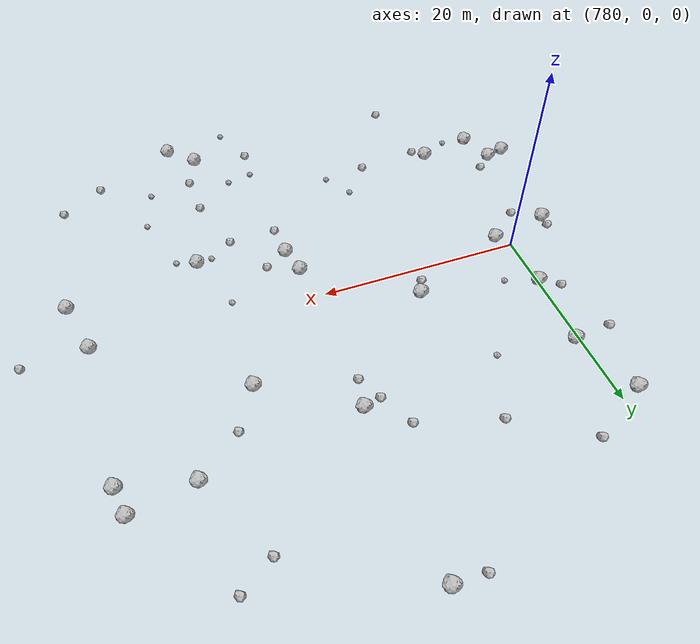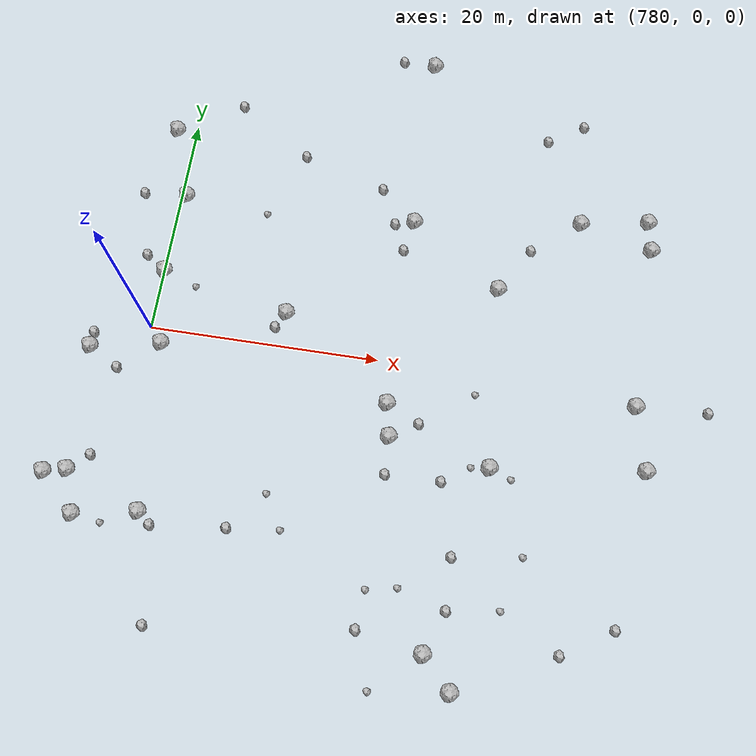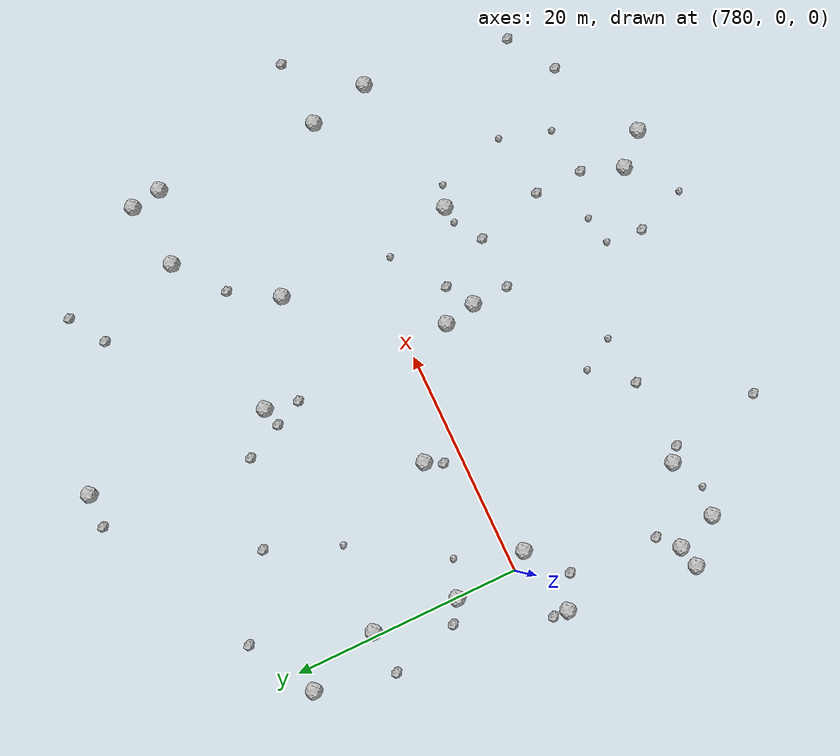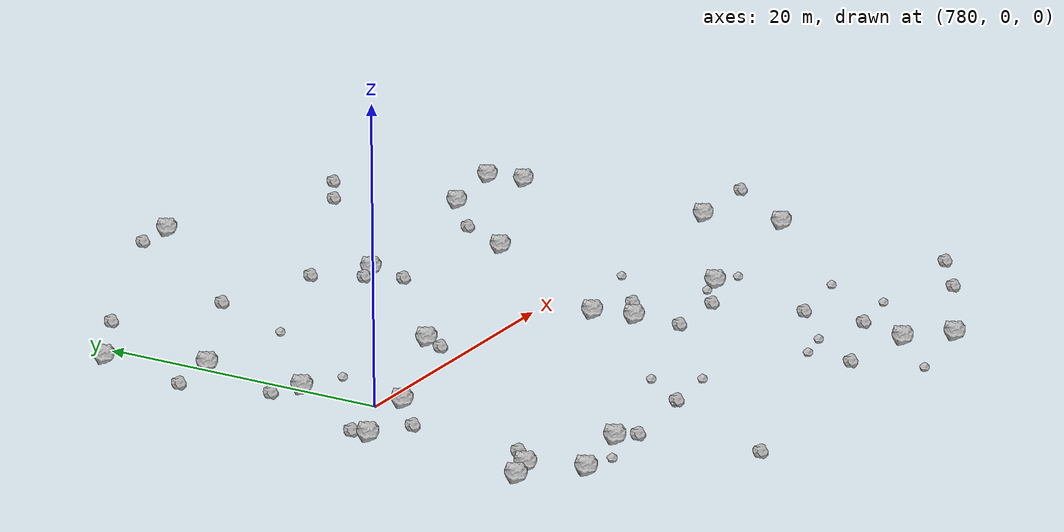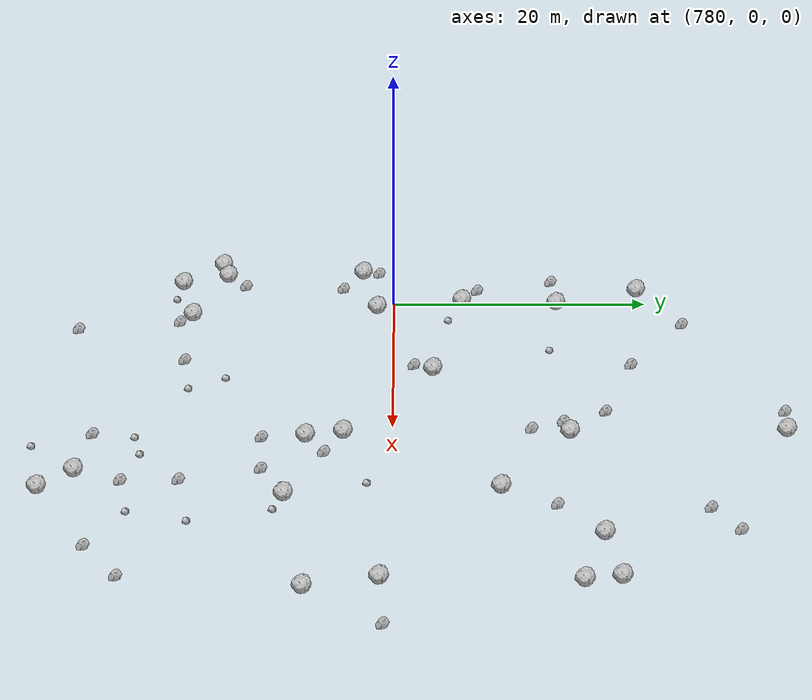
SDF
<sdf version="1.6">
 <world name="default">
  <include><uri>model://sun</uri></include>
  <model name="rock1_20_4">
   <include><uri>model://rock1</uri><pose>816.2226030430961 15.48418449693333 0.5 0 0 0</pose></include>
  </model>
  <model name="rock1_20_5">
   <include><uri>model://rock1</uri><pose>809.7214293125593 -26.217533660099434 0.5 0 0 0</pose></include>
  </model>
  <model name="rock1_20_6">
   <include><uri>model://rock1</uri><pose>801.4085640766264 -3.7356094270294307 0.5 0 0 0</pose></include>
  </model>
  <model name="rock1_20_7">
   <include><uri>model://rock1</uri><pose>801.9852757936694 -6.572630635367524 0.5 0 0 0</pose></include>
  </model>
  <model name="rock1_20_8">
   <include><uri>model://rock1</uri><pose>801.0536697471791 29.797669125663965 0.5 0 0 0</pose></include>
  </model>
  <model name="rock1_20_9">
   <include><uri>model://rock1</uri><pose>775.1882467463054 -2.509715650090463 0.5 0 0 0</pose></include>
  </model>
  <model name="rock1_20_10">
   <include><uri>model://rock1</uri><pose>778.2668399210634 19.399425876546253 0.5 0 0 0</pose></include>
  </model>
  <model name="rock1_20_11">
   <include><uri>model://rock1</uri><pose>780.0370698453422 5.413755934293874 0.5 0 0 0</pose></include>
  </model>
  <model name="rock1_20_12">
   <include><uri>model://rock1</uri><pose>781.1936926532611 -1.3356512583993947 0.5 0 0 0</pose></include>
  </model>
  <model name="rock1_20_13">
   <include><uri>model://rock1</uri><pose>775.8221520919816 -13.402793773877491 0.5 0 0 0</pose></include>
  </model>
  <model name="rock1_20_14">
   <include><uri>model://rock1</uri><pose>809.5808608791532 8.070551867616985 0.5 0 0 0</pose></include>
  </model>
  <model name="rock1_20_15">
   <include><uri>model://rock1</uri><pose>801.3563642372726 13.40629900454229 0.5 0 0 0</pose></include>
  </model>
  <model name="rock1_20_16">
   <include><uri>model://rock1</uri><pose>777.0859819276004 -16.96040591497571 0.5 0 0 0</pose></include>
  </model>
  <model name="rock1_20_17">
   <include><uri>model://rock1</uri><pose>780.5007206536908 12.91052566031994 0.5 0 0 0</pose></include>
  </model>
  <model name="rock1_20_18">
   <include><uri>model://rock1</uri><pose>822.2274202459466 16.502576363049663 0.5 0 0 0</pose></include>
  </model>
  <model name="rock1_20_19">
   <include><uri>model://rock1</uri><pose>773.8974416828413 -13.8650831393713 0.5 0 0 0</pose></include>
  </model>
  <model name="rock1_20_20">
   <include><uri>model://rock1</uri><pose>822.6813313518554 13.805497771146584 0.5 0 0 0</pose></include>
  </model>
  <model name="rock1_20_21">
   <include><uri>model://rock1</uri><pose>791.4751615014699 3.064610272440035 0.5 0 0 0</pose></include>
  </model>
  <model name="rock1_20_22">
   <include><uri>model://rock1</uri><pose>823.6740002033675 -6.308857565384436 0.5 0 0 0</pose></include>
  </model>
  <model name="rock1_20_23">
   <include><uri>model://rock1</uri><pose>810.7028821420479 -7.9972272058246325 0.5 0 0 0</pose></include>
  </model>
  <model name="rock1_20_24">
   <include><uri>model://rock1</uri><pose>822.3966587406748 -0.8485806284303834 0.5 0 0 0</pose></include>
  </model>
  <model name="rock1_20_25">
   <include><uri>model://rock1</uri><pose>782.4728897162564 -15.963887715528934 0.5 0 0 0</pose></include>
  </model>
  <model name="rock1_20_26">
   <include><uri>model://rock1</uri><pose>807.2364167975245 -23.660206902527317 0.5 0 0 0</pose></include>
  </model>
  <model name="rock2_20_0">
   <include><uri>model://rock2</uri><pose>783.9070997595913 22.770799941834305 0.3 0 0 0</pose></include>
  </model>
  <model name="rock2_20_1">
   <include><uri>model://rock2</uri><pose>808.471548675445 -15.793894945443398 0.3 0 0 0</pose></include>
  </model>
  <model name="rock2_20_2">
   <include><uri>model://rock2</uri><pose>776.6405475695065 12.592945726571948 0.3 0 0 0</pose></include>
  </model>
  <model name="rock2_20_3">
   <include><uri>model://rock2</uri><pose>808.5962714010972 -20.10275873825627 0.3 0 0 0</pose></include>
  </model>
  <model name="rock2_20_4">
   <include><uri>model://rock2</uri><pose>817.9154944690619 -22.18102941903331 0.3 0 0 0</pose></include>
  </model>
  <model name="rock2_20_5">
   <include><uri>model://rock2</uri><pose>806.8276391563923 -9.756488783793746 0.3 0 0 0</pose></include>
  </model>
  <model name="rock2_20_6">
   <include><uri>model://rock2</uri><pose>775.19939236612 -1.2116397075140348 0.3 0 0 0</pose></include>
  </model>
  <model name="rock2_20_7">
   <include><uri>model://rock2</uri><pose>822.1407181049403 -19.564250525575204 0.3 0 0 0</pose></include>
  </model>
  <model name="rock2_20_8">
   <include><uri>model://rock2</uri><pose>783.5899647532372 -16.926862770653813 0.3 0 0 0</pose></include>
  </model>
  <model name="rock2_20_9">
   <include><uri>model://rock2</uri><pose>828.5117304798205 -0.5205820193882467 0.3 0 0 0</pose></include>
  </model>
  <model name="rock2_20_10">
   <include><uri>model://rock2</uri><pose>800.7500393149212 10.533962785555325 0.3 0 0 0</pose></include>
  </model>
  <model name="rock2_20_11">
   <include><uri>model://rock2</uri><pose>777.4451300518167 -11.911098550434541 0.3 0 0 0</pose></include>
  </model>
  <model name="rock2_20_12">
   <include><uri>model://rock2</uri><pose>804.32041893501 -5.125937269368258 0.3 0 0 0</pose></include>
  </model>
  <model name="rock2_20_13">
   <include><uri>model://rock2</uri><pose>815.6227531833376 25.402720268729915 0.3 0 0 0</pose></include>
  </model>
  <model name="rock2_20_14">
   <include><uri>model://rock2</uri><pose>778.1968035620974 6.651189353046412 0.3 0 0 0</pose></include>
  </model>
  <model name="rock2_20_15">
   <include><uri>model://rock2</uri><pose>798.0607858512951 16.226092465155595 0.3 0 0 0</pose></include>
  </model>
  <model name="rock2_20_16">
   <include><uri>model://rock2</uri><pose>790.693543512581 1.6083928139428565 0.3 0 0 0</pose></include>
  </model>
  <model name="rock2_20_17">
   <include><uri>model://rock2</uri><pose>799.6445881400376 12.962000423710535 0.3 0 0 0</pose></include>
  </model>
  <model name="rock2_20_18">
   <include><uri>model://rock2</uri><pose>784.7880403102538 -24.857991185822797 0.3 0 0 0</pose></include>
  </model>
  <model name="rock2_20_19">
   <include><uri>model://rock2</uri><pose>812.4776045299589 23.40162002287515 0.3 0 0 0</pose></include>
  </model>
  <model name="rock2_20_20">
   <include><uri>model://rock2</uri><pose>777.8596600619165 -4.065073492943924 0.3 0 0 0</pose></include>
  </model>
  <model name="rock2_20_21">
   <include><uri>model://rock2</uri><pose>802.1136107829217 -9.850818836236016 0.3 0 0 0</pose></include>
  </model>
  <model name="rock2_20_22">
   <include><uri>model://rock2</uri><pose>812.0271806647104 12.177029040749204 0.3 0 0 0</pose></include>
  </model>
  <model name="rock2_20_23">
   <include><uri>model://rock2</uri><pose>790.5901382091909 18.47118092548522 0.3 0 0 0</pose></include>
  </model>
  <model name="rock2_20_24">
   <include><uri>model://rock2</uri><pose>789.9021749532945 -16.240033206118564 0.3 0 0 0</pose></include>
  </model>
  <model name="rock2_20_25">
   <include><uri>model://rock2</uri><pose>801.648356988821 -22.627749376786696 0.3 0 0 0</pose></include>
  </model>
  <model name="rock2_20_26">
   <include><uri>model://rock2</uri><pose>798.0753382673118 29.86788234958528 0.3 0 0 0</pose></include>
  </model>
  <model name="rock3_20_0">
   <include><uri>model://rock3</uri><pose>809.1339210094704 -8.206220854738092 0.2 0 0 0</pose></include>
  </model>
  <model name="rock3_20_1">
   <include><uri>model://rock3</uri><pose>792.6218026571706 -12.959197118286923 0.2 0 0 0</pose></include>
  </model>
  <model name="rock3_20_2">
   <include><uri>model://rock3</uri><pose>812.9191186514394 -19.47344718385233 0.2 0 0 0</pose></include>
  </model>
  <model name="rock3_20_3">
   <include><uri>model://rock3</uri><pose>814.2517739196584 -14.951987203986397 0.2 0 0 0</pose></include>
  </model>
  <model name="rock3_20_4">
   <include><uri>model://rock3</uri><pose>779.5163963727396 -17.392271898710217 0.2 0 0 0</pose></include>
  </model>
  <model name="rock3_20_5">
   <include><uri>model://rock3</uri><pose>803.2913570440033 -27.13424338325259 0.2 0 0 0</pose></include>
  </model>
  <model name="rock3_20_6">
   <include><uri>model://rock3</uri><pose>794.2955823634109 -15.776442048713575 0.2 0 0 0</pose></include>
  </model>
  <model name="rock3_20_7">
   <include><uri>model://rock3</uri><pose>812.5761881354135 -8.739853674705802 0.2 0 0 0</pose></include>
  </model>
  <model name="rock3_20_8">
   <include><uri>model://rock3</uri><pose>783.0644824023552 4.272783094438381 0.2 0 0 0</pose></include>
  </model>
  <model name="rock3_20_9">
   <include><uri>model://rock3</uri><pose>788.0324383370773 12.183229042950245 0.2 0 0 0</pose></include>
  </model>
  <model name="rock3_20_10">
   <include><uri>model://rock3</uri><pose>801.9366674934296 -19.43829236310176 0.2 0 0 0</pose></include>
  </model>
  <model name="rock3_20_11">
   <include><uri>model://rock3</uri><pose>789.7214590257984 -16.282445615904386 0.2 0 0 0</pose></include>
  </model>
  <model name="rock3_20_12">
   <include><uri>model://rock3</uri><pose>776.7753965115318 -16.812523262497727 0.2 0 0 0</pose></include>
  </model>
  <model name="rock3_20_13">
   <include><uri>model://rock3</uri><pose>808.7360771015021 -1.8818005038701422 0.2 0 0 0</pose></include>
  </model>
  <model name="rock3_20_14">
   <include><uri>model://rock3</uri><pose>804.5017656372382 -18.911475265166285 0.2 0 0 0</pose></include>
  </model>
 </world>
</sdf>
